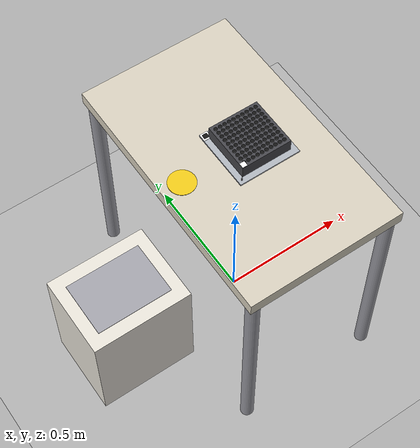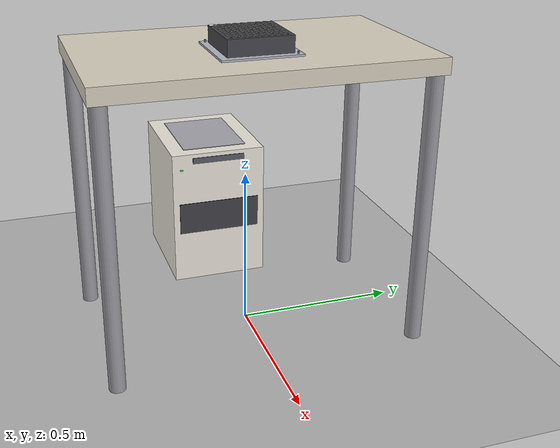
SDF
<sdf version="1.7">
 <world name="ketchup_placement_in_autosampler_cell">
  <model name="ground_plane">
   <static>true</static>
   <link name="link">
    <collision name="c"><geometry><plane><normal>0 0 1</normal><size>100 100</size></plane></geometry></collision>
    <visual name="v">
     <geometry><plane><normal>0 0 1</normal><size>100 100</size></plane></geometry>
     <material><ambient>0.60 0.60 0.60 1</ambient><diffuse>0.70 0.70 0.70 1</diffuse></material>
    </visual>
   </link>
  </model>
  <model name="bench">
   <static>true</static>
   <link name="link">
    <visual name="top">
     <pose>0 0 0.875 0 0 0</pose>
     <geometry><box><size>0.60 1.00 0.05</size></box></geometry>
     <material><ambient>0.85 0.82 0.75 1</ambient><diffuse>0.85 0.82 0.75 1</diffuse></material>
    </visual>
    <collision name="top_c">
     <pose>0 0 0.875 0 0 0</pose>
     <geometry><box><size>0.60 1.00 0.05</size></box></geometry>
    </collision>
    <visual name="leg_fr">
     <pose>0.27 -0.47 0.425 0 0 0</pose>
     <geometry><cylinder><radius>0.025</radius><length>0.850</length></cylinder></geometry>
     <material><ambient>0.45 0.45 0.48 1</ambient><diffuse>0.60 0.60 0.63 1</diffuse></material>
    </visual>
    <collision name="leg_fr_c">
     <pose>0.27 -0.47 0.425 0 0 0</pose>
     <geometry><cylinder><radius>0.025</radius><length>0.850</length></cylinder></geometry>
    </collision>
    <visual name="leg_fl">
     <pose>0.27 0.47 0.425 0 0 0</pose>
     <geometry><cylinder><radius>0.025</radius><length>0.850</length></cylinder></geometry>
     <material><ambient>0.45 0.45 0.48 1</ambient><diffuse>0.60 0.60 0.63 1</diffuse></material>
    </visual>
    <collision name="leg_fl_c">
     <pose>0.27 0.47 0.425 0 0 0</pose>
     <geometry><cylinder><radius>0.025</radius><length>0.850</length></cylinder></geometry>
    </collision>
    <visual name="leg_br">
     <pose>-0.27 -0.47 0.425 0 0 0</pose>
     <geometry><cylinder><radius>0.025</radius><length>0.850</length></cylinder></geometry>
     <material><ambient>0.45 0.45 0.48 1</ambient><diffuse>0.60 0.60 0.63 1</diffuse></material>
    </visual>
    <collision name="leg_br_c">
     <pose>-0.27 -0.47 0.425 0 0 0</pose>
     <geometry><cylinder><radius>0.025</radius><length>0.850</length></cylinder></geometry>
    </collision>
    <visual name="leg_bl">
     <pose>-0.27 0.47 0.425 0 0 0</pose>
     <geometry><cylinder><radius>0.025</radius><length>0.850</length></cylinder></geometry>
     <material><ambient>0.45 0.45 0.48 1</ambient><diffuse>0.60 0.60 0.63 1</diffuse></material>
    </visual>
    <collision name="leg_bl_c">
     <pose>-0.27 0.47 0.425 0 0 0</pose>
     <geometry><cylinder><radius>0.025</radius><length>0.850</length></cylinder></geometry>
    </collision>
   </link>
  </model>
  <model name="arm_base_marker">
   <static>true</static>
   <pose>-0.22 0.00 0.901 0 0 0</pose>
   <link name="disc">
    <visual name="v">
     <geometry><cylinder><radius>0.05</radius><length>0.002</length></cylinder></geometry>
     <material><ambient>0.95 0.80 0.10 1</ambient><diffuse>0.95 0.80 0.10 1</diffuse></material>
    </visual>
   </link>
  </model>
  <model name="hplc_instrument">
   <static>true</static>
   <pose>-0.50 0.00 0.234 0 0 0</pose>
   <link name="link">
    <visual name="chassis">
     <geometry><box><size>0.396 0.324 0.468</size></box></geometry>
     <material><ambient>0.88 0.86 0.82 1</ambient><diffuse>0.92 0.90 0.86 1</diffuse></material>
    </visual>
    <collision name="chassis_c"><geometry><box><size>0.396 0.324 0.468</size></box></geometry></collision>
    <visual name="drawer_band">
     <pose>0.199 0.00 0.000 0 0 0</pose>
     <geometry><box><size>0.002 0.280 0.110</size></box></geometry>
     <material><ambient>0.20 0.20 0.22 1</ambient><diffuse>0.25 0.25 0.27 1</diffuse></material>
    </visual>
    <visual name="led">
     <pose>0.199 -0.130 0.180 0 0 0</pose>
     <geometry><box><size>0.002 0.010 0.005</size></box></geometry>
     <material>
      <ambient>0.10 0.80 0.20 1</ambient>
      <diffuse>0.15 0.95 0.25 1</diffuse>
      <emissive>0.05 0.40 0.10 1</emissive>
     </material>
    </visual>
    <visual name="label_strip">
     <pose>0.199 0.000 0.210 0 0 0</pose>
     <geometry><box><size>0.002 0.180 0.020</size></box></geometry>
     <material><ambient>0.30 0.30 0.34 1</ambient><diffuse>0.35 0.35 0.40 1</diffuse></material>
    </visual>
    <visual name="top_vent">
     <pose>0.000 0.000 0.235 0 0 0</pose>
     <geometry><box><size>0.300 0.220 0.002</size></box></geometry>
     <material><ambient>0.55 0.55 0.58 1</ambient><diffuse>0.65 0.65 0.68 1</diffuse></material>
    </visual>
   </link>
  </model>
  <model name="alignment_plate">
   <static>true</static>
   <pose>0.05 0.00 0.903 0 0 0</pose>
   <link name="link">
    <visual name="plate">
     <geometry><box><size>0.240 0.240 0.006</size></box></geometry>
     <material><ambient>0.55 0.57 0.60 1</ambient><diffuse>0.70 0.72 0.75 1</diffuse></material>
    </visual>
    <collision name="c"><geometry><box><size>0.240 0.240 0.006</size></box></geometry></collision>
    <visual name="pin_a">
     <pose>0.105 0.105 0.006 0 0 0</pose>
     <geometry><cylinder><radius>0.003</radius><length>0.008</length></cylinder></geometry>
     <material><ambient>0.30 0.30 0.32 1</ambient><diffuse>0.40 0.40 0.42 1</diffuse></material>
    </visual>
    <visual name="pin_b">
     <pose>-0.105 -0.105 0.006 0 0 0</pose>
     <geometry><cylinder><radius>0.003</radius><length>0.008</length></cylinder></geometry>
     <material><ambient>0.30 0.30 0.32 1</ambient><diffuse>0.40 0.40 0.42 1</diffuse></material>
    </visual>
    <visual name="fiducial_bg">
     <pose>-0.105 0.105 0.006 0 0 0</pose>
     <geometry><box><size>0.030 0.030 0.001</size></box></geometry>
     <material><ambient>0.98 0.98 0.98 1</ambient><diffuse>0.99 0.99 0.99 1</diffuse></material>
    </visual>
    <visual name="fiducial_fg">
     <pose>-0.105 0.105 0.0065 0 0 0</pose>
     <geometry><box><size>0.018 0.018 0.001</size></box></geometry>
     <material><ambient>0.05 0.05 0.05 1</ambient><diffuse>0.08 0.08 0.08 1</diffuse></material>
    </visual>
   </link>
  </model>
  <model name="destination_tray">
   <static>true</static>
   <pose>0.05 0.00 0.931 0 0 0</pose>
   <link name="link">
    <visual name="body">
     <geometry><box><size>0.195 0.195 0.050</size></box></geometry>
     <material><ambient>0.20 0.20 0.22 1</ambient><diffuse>0.28 0.28 0.30 1</diffuse></material>
    </visual>
    <collision name="c"><geometry><box><size>0.195 0.195 0.050</size></box></geometry></collision>
    <visual name="corner_marker">
     <pose>-0.087 -0.087 0.026 0 0 0</pose>
     <geometry><box><size>0.020 0.020 0.001</size></box></geometry>
     <material><ambient>0.98 0.98 0.98 1</ambient><diffuse>0.99 0.99 0.99 1</diffuse></material>
    </visual>
    <visual name="slot_1_1">
     <pose>-0.081 -0.081 0.026 0 0 0</pose>
     <geometry><cylinder><radius>0.007</radius><length>0.001</length></cylinder></geometry>
     <material><ambient>0.05 0.05 0.05 1</ambient><diffuse>0.08 0.08 0.08 1</diffuse></material>
    </visual>
    <visual name="slot_2_1">
     <pose>-0.063 -0.081 0.026 0 0 0</pose>
     <geometry><cylinder><radius>0.007</radius><length>0.001</length></cylinder></geometry>
     <material><ambient>0.05 0.05 0.05 1</ambient><diffuse>0.08 0.08 0.08 1</diffuse></material>
    </visual>
    <visual name="slot_3_1">
     <pose>-0.045 -0.081 0.026 0 0 0</pose>
     <geometry><cylinder><radius>0.007</radius><length>0.001</length></cylinder></geometry>
     <material><ambient>0.05 0.05 0.05 1</ambient><diffuse>0.08 0.08 0.08 1</diffuse></material>
    </visual>
    <visual name="slot_4_1">
     <pose>-0.027 -0.081 0.026 0 0 0</pose>
     <geometry><cylinder><radius>0.007</radius><length>0.001</length></cylinder></geometry>
     <material><ambient>0.05 0.05 0.05 1</ambient><diffuse>0.08 0.08 0.08 1</diffuse></material>
    </visual>
    <visual name="slot_5_1">
     <pose>-0.009 -0.081 0.026 0 0 0</pose>
     <geometry><cylinder><radius>0.007</radius><length>0.001</length></cylinder></geometry>
     <material><ambient>0.05 0.05 0.05 1</ambient><diffuse>0.08 0.08 0.08 1</diffuse></material>
    </visual>
    <visual name="slot_6_1">
     <pose>0.009 -0.081 0.026 0 0 0</pose>
     <geometry><cylinder><radius>0.007</radius><length>0.001</length></cylinder></geometry>
     <material><ambient>0.05 0.05 0.05 1</ambient><diffuse>0.08 0.08 0.08 1</diffuse></material>
    </visual>
    <visual name="slot_7_1">
     <pose>0.027 -0.081 0.026 0 0 0</pose>
     <geometry><cylinder><radius>0.007</radius><length>0.001</length></cylinder></geometry>
     <material><ambient>0.05 0.05 0.05 1</ambient><diffuse>0.08 0.08 0.08 1</diffuse></material>
    </visual>
    <visual name="slot_8_1">
     <pose>0.045 -0.081 0.026 0 0 0</pose>
     <geometry><cylinder><radius>0.007</radius><length>0.001</length></cylinder></geometry>
     <material><ambient>0.05 0.05 0.05 1</ambient><diffuse>0.08 0.08 0.08 1</diffuse></material>
    </visual>
    <visual name="slot_9_1">
     <pose>0.063 -0.081 0.026 0 0 0</pose>
     <geometry><cylinder><radius>0.007</radius><length>0.001</length></cylinder></geometry>
     <material><ambient>0.05 0.05 0.05 1</ambient><diffuse>0.08 0.08 0.08 1</diffuse></material>
    </visual>
    <visual name="slot_10_1">
     <pose>0.081 -0.081 0.026 0 0 0</pose>
     <geometry><cylinder><radius>0.007</radius><length>0.001</length></cylinder></geometry>
     <material><ambient>0.05 0.05 0.05 1</ambient><diffuse>0.08 0.08 0.08 1</diffuse></material>
    </visual>
    <visual name="slot_1_2">
     <pose>-0.081 -0.063 0.026 0 0 0</pose>
     <geometry><cylinder><radius>0.007</radius><length>0.001</length></cylinder></geometry>
     <material><ambient>0.05 0.05 0.05 1</ambient><diffuse>0.08 0.08 0.08 1</diffuse></material>
    </visual>
    <visual name="slot_2_2">
     <pose>-0.063 -0.063 0.026 0 0 0</pose>
     <geometry><cylinder><radius>0.007</radius><length>0.001</length></cylinder></geometry>
     <material><ambient>0.05 0.05 0.05 1</ambient><diffuse>0.08 0.08 0.08 1</diffuse></material>
    </visual>
    <visual name="slot_3_2">
     <pose>-0.045 -0.063 0.026 0 0 0</pose>
     <geometry><cylinder><radius>0.007</radius><length>0.001</length></cylinder></geometry>
     <material><ambient>0.05 0.05 0.05 1</ambient><diffuse>0.08 0.08 0.08 1</diffuse></material>
    </visual>
    <visual name="slot_4_2">
     <pose>-0.027 -0.063 0.026 0 0 0</pose>
     <geometry><cylinder><radius>0.007</radius><length>0.001</length></cylinder></geometry>
     <material><ambient>0.05 0.05 0.05 1</ambient><diffuse>0.08 0.08 0.08 1</diffuse></material>
    </visual>
    <visual name="slot_5_2">
     <pose>-0.009 -0.063 0.026 0 0 0</pose>
     <geometry><cylinder><radius>0.007</radius><length>0.001</length></cylinder></geometry>
     <material><ambient>0.05 0.05 0.05 1</ambient><diffuse>0.08 0.08 0.08 1</diffuse></material>
    </visual>
    <visual name="slot_6_2">
     <pose>0.009 -0.063 0.026 0 0 0</pose>
     <geometry><cylinder><radius>0.007</radius><length>0.001</length></cylinder></geometry>
     <material><ambient>0.05 0.05 0.05 1</ambient><diffuse>0.08 0.08 0.08 1</diffuse></material>
    </visual>
    <visual name="slot_7_2">
     <pose>0.027 -0.063 0.026 0 0 0</pose>
     <geometry><cylinder><radius>0.007</radius><length>0.001</length></cylinder></geometry>
     <material><ambient>0.05 0.05 0.05 1</ambient><diffuse>0.08 0.08 0.08 1</diffuse></material>
    </visual>
    <visual name="slot_8_2">
     <pose>0.045 -0.063 0.026 0 0 0</pose>
     <geometry><cylinder><radius>0.007</radius><length>0.001</length></cylinder></geometry>
     <material><ambient>0.05 0.05 0.05 1</ambient><diffuse>0.08 0.08 0.08 1</diffuse></material>
    </visual>
    <visual name="slot_9_2">
     <pose>0.063 -0.063 0.026 0 0 0</pose>
     <geometry><cylinder><radius>0.007</radius><length>0.001</length></cylinder></geometry>
     <material><ambient>0.05 0.05 0.05 1</ambient><diffuse>0.08 0.08 0.08 1</diffuse></material>
    </visual>
    <visual name="slot_10_2">
     <pose>0.081 -0.063 0.026 0 0 0</pose>
     <geometry><cylinder><radius>0.007</radius><length>0.001</length></cylinder></geometry>
     <material><ambient>0.05 0.05 0.05 1</ambient><diffuse>0.08 0.08 0.08 1</diffuse></material>
    </visual>
    <visual name="slot_1_3">
     <pose>-0.081 -0.045 0.026 0 0 0</pose>
     <geometry><cylinder><radius>0.007</radius><length>0.001</length></cylinder></geometry>
     <material><ambient>0.05 0.05 0.05 1</ambient><diffuse>0.08 0.08 0.08 1</diffuse></material>
    </visual>
    <visual name="slot_2_3">
     <pose>-0.063 -0.045 0.026 0 0 0</pose>
     <geometry><cylinder><radius>0.007</radius><length>0.001</length></cylinder></geometry>
     <material><ambient>0.05 0.05 0.05 1</ambient><diffuse>0.08 0.08 0.08 1</diffuse></material>
    </visual>
    <visual name="slot_3_3">
     <pose>-0.045 -0.045 0.026 0 0 0</pose>
     <geometry><cylinder><radius>0.007</radius><length>0.001</length></cylinder></geometry>
     <material><ambient>0.05 0.05 0.05 1</ambient><diffuse>0.08 0.08 0.08 1</diffuse></material>
    </visual>
    <visual name="slot_4_3">
     <pose>-0.027 -0.045 0.026 0 0 0</pose>
     <geometry><cylinder><radius>0.007</radius><length>0.001</length></cylinder></geometry>
     <material><ambient>0.05 0.05 0.05 1</ambient><diffuse>0.08 0.08 0.08 1</diffuse></material>
    </visual>
    <visual name="slot_5_3">
     <pose>-0.009 -0.045 0.026 0 0 0</pose>
     <geometry><cylinder><radius>0.007</radius><length>0.001</length></cylinder></geometry>
     <material><ambient>0.05 0.05 0.05 1</ambient><diffuse>0.08 0.08 0.08 1</diffuse></material>
    </visual>
    <visual name="slot_6_3">
     <pose>0.009 -0.045 0.026 0 0 0</pose>
     <geometry><cylinder><radius>0.007</radius><length>0.001</length></cylinder></geometry>
     <material><ambient>0.05 0.05 0.05 1</ambient><diffuse>0.08 0.08 0.08 1</diffuse></material>
    </visual>
    <visual name="slot_7_3">
     <pose>0.027 -0.045 0.026 0 0 0</pose>
     <geometry><cylinder><radius>0.007</radius><length>0.001</length></cylinder></geometry>
     <material><ambient>0.05 0.05 0.05 1</ambient><diffuse>0.08 0.08 0.08 1</diffuse></material>
    </visual>
    <visual name="slot_8_3">
     <pose>0.045 -0.045 0.026 0 0 0</pose>
     <geometry><cylinder><radius>0.007</radius><length>0.001</length></cylinder></geometry>
     <material><ambient>0.05 0.05 0.05 1</ambient><diffuse>0.08 0.08 0.08 1</diffuse></material>
    </visual>
    <visual name="slot_9_3">
     <pose>0.063 -0.045 0.026 0 0 0</pose>
     <geometry><cylinder><radius>0.007</radius><length>0.001</length></cylinder></geometry>
     <material><ambient>0.05 0.05 0.05 1</ambient><diffuse>0.08 0.08 0.08 1</diffuse></material>
    </visual>
    <visual name="slot_10_3">
     <pose>0.081 -0.045 0.026 0 0 0</pose>
     <geometry><cylinder><radius>0.007</radius><length>0.001</length></cylinder></geometry>
     <material><ambient>0.05 0.05 0.05 1</ambient><diffuse>0.08 0.08 0.08 1</diffuse></material>
    </visual>
    <visual name="slot_1_4">
     <pose>-0.081 -0.027 0.026 0 0 0</pose>
     <geometry><cylinder><radius>0.007</radius><length>0.001</length></cylinder></geometry>
     <material><ambient>0.05 0.05 0.05 1</ambient><diffuse>0.08 0.08 0.08 1</diffuse></material>
    </visual>
    <visual name="slot_2_4">
     <pose>-0.063 -0.027 0.026 0 0 0</pose>
     <geometry><cylinder><radius>0.007</radius><length>0.001</length></cylinder></geometry>
     <material><ambient>0.05 0.05 0.05 1</ambient><diffuse>0.08 0.08 0.08 1</diffuse></material>
    </visual>
    <visual name="slot_3_4">
     <pose>-0.045 -0.027 0.026 0 0 0</pose>
     <geometry><cylinder><radius>0.007</radius><length>0.001</length></cylinder></geometry>
     <material><ambient>0.05 0.05 0.05 1</ambient><diffuse>0.08 0.08 0.08 1</diffuse></material>
    </visual>
    <visual name="slot_4_4">
     <pose>-0.027 -0.027 0.026 0 0 0</pose>
     <geometry><cylinder><radius>0.007</radius><length>0.001</length></cylinder></geometry>
     <material><ambient>0.05 0.05 0.05 1</ambient><diffuse>0.08 0.08 0.08 1</diffuse></material>
    </visual>
    <visual name="slot_5_4">
     <pose>-0.009 -0.027 0.026 0 0 0</pose>
     <geometry><cylinder><radius>0.007</radius><length>0.001</length></cylinder></geometry>
     <material><ambient>0.05 0.05 0.05 1</ambient><diffuse>0.08 0.08 0.08 1</diffuse></material>
    </visual>
    <visual name="slot_6_4">
     <pose>0.009 -0.027 0.026 0 0 0</pose>
     <geometry><cylinder><radius>0.007</radius><length>0.001</length></cylinder></geometry>
     <material><ambient>0.05 0.05 0.05 1</ambient><diffuse>0.08 0.08 0.08 1</diffuse></material>
    </visual>
    <visual name="slot_7_4">
     <pose>0.027 -0.027 0.026 0 0 0</pose>
     <geometry><cylinder><radius>0.007</radius><length>0.001</length></cylinder></geometry>
     <material><ambient>0.05 0.05 0.05 1</ambient><diffuse>0.08 0.08 0.08 1</diffuse></material>
    </visual>
    <visual name="slot_8_4">
     <pose>0.045 -0.027 0.026 0 0 0</pose>
     <geometry><cylinder><radius>0.007</radius><length>0.001</length></cylinder></geometry>
     <material><ambient>0.05 0.05 0.05 1</ambient><diffuse>0.08 0.08 0.08 1</diffuse></material>
    </visual>
    <visual name="slot_9_4">
     <pose>0.063 -0.027 0.026 0 0 0</pose>
     <geometry><cylinder><radius>0.007</radius><length>0.001</length></cylinder></geometry>
     <material><ambient>0.05 0.05 0.05 1</ambient><diffuse>0.08 0.08 0.08 1</diffuse></material>
    </visual>
    <visual name="slot_10_4">
     <pose>0.081 -0.027 0.026 0 0 0</pose>
     <geometry><cylinder><radius>0.007</radius><length>0.001</length></cylinder></geometry>
     <material><ambient>0.05 0.05 0.05 1</ambient><diffuse>0.08 0.08 0.08 1</diffuse></material>
    </visual>
    <visual name="slot_1_5">
     <pose>-0.081 -0.009 0.026 0 0 0</pose>
     <geometry><cylinder><radius>0.007</radius><length>0.001</length></cylinder></geometry>
     <material><ambient>0.05 0.05 0.05 1</ambient><diffuse>0.08 0.08 0.08 1</diffuse></material>
    </visual>
    <visual name="slot_2_5">
     <pose>-0.063 -0.009 0.026 0 0 0</pose>
     <geometry><cylinder><radius>0.007</radius><length>0.001</length></cylinder></geometry>
     <material><ambient>0.05 0.05 0.05 1</ambient><diffuse>0.08 0.08 0.08 1</diffuse></material>
    </visual>
    <visual name="slot_3_5">
     <pose>-0.045 -0.009 0.026 0 0 0</pose>
     <geometry><cylinder><radius>0.007</radius><length>0.001</length></cylinder></geometry>
     <material><ambient>0.05 0.05 0.05 1</ambient><diffuse>0.08 0.08 0.08 1</diffuse></material>
    </visual>
    <visual name="slot_4_5">
     <pose>-0.027 -0.009 0.026 0 0 0</pose>
     <geometry><cylinder><radius>0.007</radius><length>0.001</length></cylinder></geometry>
     <material><ambient>0.05 0.05 0.05 1</ambient><diffuse>0.08 0.08 0.08 1</diffuse></material>
    </visual>
    <visual name="slot_5_5">
     <pose>-0.009 -0.009 0.026 0 0 0</pose>
     <geometry><cylinder><radius>0.007</radius><length>0.001</length></cylinder></geometry>
     <material><ambient>0.05 0.05 0.05 1</ambient><diffuse>0.08 0.08 0.08 1</diffuse></material>
    </visual>
    <visual name="slot_6_5">
     <pose>0.009 -0.009 0.026 0 0 0</pose>
     <geometry><cylinder><radius>0.007</radius><length>0.001</length></cylinder></geometry>
     <material><ambient>0.05 0.05 0.05 1</ambient><diffuse>0.08 0.08 0.08 1</diffuse></material>
    </visual>
    <visual name="slot_7_5">
     <pose>0.027 -0.009 0.026 0 0 0</pose>
     <geometry><cylinder><radius>0.007</radius><length>0.001</length></cylinder></geometry>
     <material><ambient>0.05 0.05 0.05 1</ambient><diffuse>0.08 0.08 0.08 1</diffuse></material>
    </visual>
    <visual name="slot_8_5">
     <pose>0.045 -0.009 0.026 0 0 0</pose>
     <geometry><cylinder><radius>0.007</radius><length>0.001</length></cylinder></geometry>
     <material><ambient>0.05 0.05 0.05 1</ambient><diffuse>0.08 0.08 0.08 1</diffuse></material>
    </visual>
    <visual name="slot_9_5">
     <pose>0.063 -0.009 0.026 0 0 0</pose>
     <geometry><cylinder><radius>0.007</radius><length>0.001</length></cylinder></geometry>
     <material><ambient>0.05 0.05 0.05 1</ambient><diffuse>0.08 0.08 0.08 1</diffuse></material>
    </visual>
    <visual name="slot_10_5">
     <pose>0.081 -0.009 0.026 0 0 0</pose>
     <geometry><cylinder><radius>0.007</radius><length>0.001</length></cylinder></geometry>
     <material><ambient>0.05 0.05 0.05 1</ambient><diffuse>0.08 0.08 0.08 1</diffuse></material>
    </visual>
    <visual name="slot_1_6">
     <pose>-0.081 0.009 0.026 0 0 0</pose>
     <geometry><cylinder><radius>0.007</radius><length>0.001</length></cylinder></geometry>
     <material><ambient>0.05 0.05 0.05 1</ambient><diffuse>0.08 0.08 0.08 1</diffuse></material>
    </visual>
    <visual name="slot_2_6">
     <pose>-0.063 0.009 0.026 0 0 0</pose>
     <geometry><cylinder><radius>0.007</radius><length>0.001</length></cylinder></geometry>
     <material><ambient>0.05 0.05 0.05 1</ambient><diffuse>0.08 0.08 0.08 1</diffuse></material>
    </visual>
    <visual name="slot_3_6">
     <pose>-0.045 0.009 0.026 0 0 0</pose>
     <geometry><cylinder><radius>0.007</radius><length>0.001</length></cylinder></geometry>
     <material><ambient>0.05 0.05 0.05 1</ambient><diffuse>0.08 0.08 0.08 1</diffuse></material>
    </visual>
    <visual name="slot_4_6">
     <pose>-0.027 0.009 0.026 0 0 0</pose>
     <geometry><cylinder><radius>0.007</radius><length>0.001</length></cylinder></geometry>
     <material><ambient>0.05 0.05 0.05 1</ambient><diffuse>0.08 0.08 0.08 1</diffuse></material>
    </visual>
    <visual name="slot_5_6">
     <pose>-0.009 0.009 0.026 0 0 0</pose>
     <geometry><cylinder><radius>0.007</radius><length>0.001</length></cylinder></geometry>
     <material><ambient>0.05 0.05 0.05 1</ambient><diffuse>0.08 0.08 0.08 1</diffuse></material>
    </visual>
    <visual name="slot_6_6">
     <pose>0.009 0.009 0.026 0 0 0</pose>
     <geometry><cylinder><radius>0.007</radius><length>0.001</length></cylinder></geometry>
     <material><ambient>0.05 0.05 0.05 1</ambient><diffuse>0.08 0.08 0.08 1</diffuse></material>
    </visual>
    <visual name="slot_7_6">
     <pose>0.027 0.009 0.026 0 0 0</pose>
     <geometry><cylinder><radius>0.007</radius><length>0.001</length></cylinder></geometry>
     <material><ambient>0.05 0.05 0.05 1</ambient><diffuse>0.08 0.08 0.08 1</diffuse></material>
    </visual>
    <visual name="slot_8_6">
     <pose>0.045 0.009 0.026 0 0 0</pose>
     <geometry><cylinder><radius>0.007</radius><length>0.001</length></cylinder></geometry>
     <material><ambient>0.05 0.05 0.05 1</ambient><diffuse>0.08 0.08 0.08 1</diffuse></material>
    </visual>
    <visual name="slot_9_6">
     <pose>0.063 0.009 0.026 0 0 0</pose>
     <geometry><cylinder><radius>0.007</radius><length>0.001</length></cylinder></geometry>
     <material><ambient>0.05 0.05 0.05 1</ambient><diffuse>0.08 0.08 0.08 1</diffuse></material>
    </visual>
    <visual name="slot_10_6">
     <pose>0.081 0.009 0.026 0 0 0</pose>
     <geometry><cylinder><radius>0.007</radius><length>0.001</length></cylinder></geometry>
     <material><ambient>0.05 0.05 0.05 1</ambient><diffuse>0.08 0.08 0.08 1</diffuse></material>
    </visual>
    <visual name="slot_1_7">
     <pose>-0.081 0.027 0.026 0 0 0</pose>
     <geometry><cylinder><radius>0.007</radius><length>0.001</length></cylinder></geometry>
     <material><ambient>0.05 0.05 0.05 1</ambient><diffuse>0.08 0.08 0.08 1</diffuse></material>
    </visual>
    <visual name="slot_2_7">
     <pose>-0.063 0.027 0.026 0 0 0</pose>
     <geometry><cylinder><radius>0.007</radius><length>0.001</length></cylinder></geometry>
     <material><ambient>0.05 0.05 0.05 1</ambient><diffuse>0.08 0.08 0.08 1</diffuse></material>
    </visual>
    <visual name="slot_3_7">
     <pose>-0.045 0.027 0.026 0 0 0</pose>
     <geometry><cylinder><radius>0.007</radius><length>0.001</length></cylinder></geometry>
     <material><ambient>0.05 0.05 0.05 1</ambient><diffuse>0.08 0.08 0.08 1</diffuse></material>
    </visual>
    <visual name="slot_4_7">
     <pose>-0.027 0.027 0.026 0 0 0</pose>
     <geometry><cylinder><radius>0.007</radius><length>0.001</length></cylinder></geometry>
     <material><ambient>0.05 0.05 0.05 1</ambient><diffuse>0.08 0.08 0.08 1</diffuse></material>
    </visual>
    <visual name="slot_5_7">
     <pose>-0.009 0.027 0.026 0 0 0</pose>
     <geometry><cylinder><radius>0.007</radius><length>0.001</length></cylinder></geometry>
     <material><ambient>0.05 0.05 0.05 1</ambient><diffuse>0.08 0.08 0.08 1</diffuse></material>
    </visual>
    <visual name="slot_6_7">
     <pose>0.009 0.027 0.026 0 0 0</pose>
     <geometry><cylinder><radius>0.007</radius><length>0.001</length></cylinder></geometry>
     <material><ambient>0.05 0.05 0.05 1</ambient><diffuse>0.08 0.08 0.08 1</diffuse></material>
    </visual>
    <visual name="slot_7_7">
     <pose>0.027 0.027 0.026 0 0 0</pose>
     <geometry><cylinder><radius>0.007</radius><length>0.001</length></cylinder></geometry>
     <material><ambient>0.05 0.05 0.05 1</ambient><diffuse>0.08 0.08 0.08 1</diffuse></material>
    </visual>
    <visual name="slot_8_7">
     <pose>0.045 0.027 0.026 0 0 0</pose>
     <geometry><cylinder><radius>0.007</radius><length>0.001</length></cylinder></geometry>
     <material><ambient>0.05 0.05 0.05 1</ambient><diffuse>0.08 0.08 0.08 1</diffuse></material>
    </visual>
    <visual name="slot_9_7">
     <pose>0.063 0.027 0.026 0 0 0</pose>
     <geometry><cylinder><radius>0.007</radius><length>0.001</length></cylinder></geometry>
     <material><ambient>0.05 0.05 0.05 1</ambient><diffuse>0.08 0.08 0.08 1</diffuse></material>
    </visual>
    <visual name="slot_10_7">
     <pose>0.081 0.027 0.026 0 0 0</pose>
     <geometry><cylinder><radius>0.007</radius><length>0.001</length></cylinder></geometry>
     <material><ambient>0.05 0.05 0.05 1</ambient><diffuse>0.08 0.08 0.08 1</diffuse></material>
    </visual>
    <visual name="slot_1_8">
     <pose>-0.081 0.045 0.026 0 0 0</pose>
     <geometry><cylinder><radius>0.007</radius><length>0.001</length></cylinder></geometry>
     <material><ambient>0.05 0.05 0.05 1</ambient><diffuse>0.08 0.08 0.08 1</diffuse></material>
    </visual>
    <visual name="slot_2_8">
     <pose>-0.063 0.045 0.026 0 0 0</pose>
     <geometry><cylinder><radius>0.007</radius><length>0.001</length></cylinder></geometry>
     <material><ambient>0.05 0.05 0.05 1</ambient><diffuse>0.08 0.08 0.08 1</diffuse></material>
    </visual>
    <visual name="slot_3_8">
     <pose>-0.045 0.045 0.026 0 0 0</pose>
     <geometry><cylinder><radius>0.007</radius><length>0.001</length></cylinder></geometry>
     <material><ambient>0.05 0.05 0.05 1</ambient><diffuse>0.08 0.08 0.08 1</diffuse></material>
    </visual>
    <visual name="slot_4_8">
     <pose>-0.027 0.045 0.026 0 0 0</pose>
     <geometry><cylinder><radius>0.007</radius><length>0.001</length></cylinder></geometry>
     <material><ambient>0.05 0.05 0.05 1</ambient><diffuse>0.08 0.08 0.08 1</diffuse></material>
    </visual>
    <visual name="slot_5_8">
     <pose>-0.009 0.045 0.026 0 0 0</pose>
     <geometry><cylinder><radius>0.007</radius><length>0.001</length></cylinder></geometry>
     <material><ambient>0.05 0.05 0.05 1</ambient><diffuse>0.08 0.08 0.08 1</diffuse></material>
    </visual>
    <visual name="slot_6_8">
     <pose>0.009 0.045 0.026 0 0 0</pose>
     <geometry><cylinder><radius>0.007</radius><length>0.001</length></cylinder></geometry>
     <material><ambient>0.05 0.05 0.05 1</ambient><diffuse>0.08 0.08 0.08 1</diffuse></material>
    </visual>
    <visual name="slot_7_8">
     <pose>0.027 0.045 0.026 0 0 0</pose>
     <geometry><cylinder><radius>0.007</radius><length>0.001</length></cylinder></geometry>
     <material><ambient>0.05 0.05 0.05 1</ambient><diffuse>0.08 0.08 0.08 1</diffuse></material>
    </visual>
    <visual name="slot_8_8">
     <pose>0.045 0.045 0.026 0 0 0</pose>
     <geometry><cylinder><radius>0.007</radius><length>0.001</length></cylinder></geometry>
     <material><ambient>0.05 0.05 0.05 1</ambient><diffuse>0.08 0.08 0.08 1</diffuse></material>
    </visual>
    <visual name="slot_9_8">
     <pose>0.063 0.045 0.026 0 0 0</pose>
     <geometry><cylinder><radius>0.007</radius><length>0.001</length></cylinder></geometry>
     <material><ambient>0.05 0.05 0.05 1</ambient><diffuse>0.08 0.08 0.08 1</diffuse></material>
    </visual>
    <visual name="slot_10_8">
     <pose>0.081 0.045 0.026 0 0 0</pose>
     <geometry><cylinder><radius>0.007</radius><length>0.001</length></cylinder></geometry>
     <material><ambient>0.05 0.05 0.05 1</ambient><diffuse>0.08 0.08 0.08 1</diffuse></material>
    </visual>
    <visual name="slot_1_9">
     <pose>-0.081 0.063 0.026 0 0 0</pose>
     <geometry><cylinder><radius>0.007</radius><length>0.001</length></cylinder></geometry>
     <material><ambient>0.05 0.05 0.05 1</ambient><diffuse>0.08 0.08 0.08 1</diffuse></material>
    </visual>
    <visual name="slot_2_9">
     <pose>-0.063 0.063 0.026 0 0 0</pose>
     <geometry><cylinder><radius>0.007</radius><length>0.001</length></cylinder></geometry>
     <material><ambient>0.05 0.05 0.05 1</ambient><diffuse>0.08 0.08 0.08 1</diffuse></material>
    </visual>
    <visual name="slot_3_9">
     <pose>-0.045 0.063 0.026 0 0 0</pose>
     <geometry><cylinder><radius>0.007</radius><length>0.001</length></cylinder></geometry>
     <material><ambient>0.05 0.05 0.05 1</ambient><diffuse>0.08 0.08 0.08 1</diffuse></material>
    </visual>
    <visual name="slot_4_9">
     <pose>-0.027 0.063 0.026 0 0 0</pose>
     <geometry><cylinder><radius>0.007</radius><length>0.001</length></cylinder></geometry>
     <material><ambient>0.05 0.05 0.05 1</ambient><diffuse>0.08 0.08 0.08 1</diffuse></material>
    </visual>
    <visual name="slot_5_9">
     <pose>-0.009 0.063 0.026 0 0 0</pose>
     <geometry><cylinder><radius>0.007</radius><length>0.001</length></cylinder></geometry>
     <material><ambient>0.05 0.05 0.05 1</ambient><diffuse>0.08 0.08 0.08 1</diffuse></material>
    </visual>
    <visual name="slot_6_9">
     <pose>0.009 0.063 0.026 0 0 0</pose>
     <geometry><cylinder><radius>0.007</radius><length>0.001</length></cylinder></geometry>
     <material><ambient>0.05 0.05 0.05 1</ambient><diffuse>0.08 0.08 0.08 1</diffuse></material>
    </visual>
    <visual name="slot_7_9">
     <pose>0.027 0.063 0.026 0 0 0</pose>
     <geometry><cylinder><radius>0.007</radius><length>0.001</length></cylinder></geometry>
     <material><ambient>0.05 0.05 0.05 1</ambient><diffuse>0.08 0.08 0.08 1</diffuse></material>
    </visual>
    <visual name="slot_8_9">
     <pose>0.045 0.063 0.026 0 0 0</pose>
     <geometry><cylinder><radius>0.007</radius><length>0.001</length></cylinder></geometry>
     <material><ambient>0.05 0.05 0.05 1</ambient><diffuse>0.08 0.08 0.08 1</diffuse></material>
    </visual>
    <visual name="slot_9_9">
     <pose>0.063 0.063 0.026 0 0 0</pose>
     <geometry><cylinder><radius>0.007</radius><length>0.001</length></cylinder></geometry>
     <material><ambient>0.05 0.05 0.05 1</ambient><diffuse>0.08 0.08 0.08 1</diffuse></material>
    </visual>
    <visual name="slot_10_9">
     <pose>0.081 0.063 0.026 0 0 0</pose>
     <geometry><cylinder><radius>0.007</radius><length>0.001</length></cylinder></geometry>
     <material><ambient>0.05 0.05 0.05 1</ambient><diffuse>0.08 0.08 0.08 1</diffuse></material>
    </visual>
    <visual name="slot_1_10">
     <pose>-0.081 0.081 0.026 0 0 0</pose>
     <geometry><cylinder><radius>0.007</radius><length>0.001</length></cylinder></geometry>
     <material><ambient>0.05 0.05 0.05 1</ambient><diffuse>0.08 0.08 0.08 1</diffuse></material>
    </visual>
    <visual name="slot_2_10">
     <pose>-0.063 0.081 0.026 0 0 0</pose>
     <geometry><cylinder><radius>0.007</radius><length>0.001</length></cylinder></geometry>
     <material><ambient>0.05 0.05 0.05 1</ambient><diffuse>0.08 0.08 0.08 1</diffuse></material>
    </visual>
    <visual name="slot_3_10">
     <pose>-0.045 0.081 0.026 0 0 0</pose>
     <geometry><cylinder><radius>0.007</radius><length>0.001</length></cylinder></geometry>
     <material><ambient>0.05 0.05 0.05 1</ambient><diffuse>0.08 0.08 0.08 1</diffuse></material>
    </visual>
    <visual name="slot_4_10">
     <pose>-0.027 0.081 0.026 0 0 0</pose>
     <geometry><cylinder><radius>0.007</radius><length>0.001</length></cylinder></geometry>
     <material><ambient>0.05 0.05 0.05 1</ambient><diffuse>0.08 0.08 0.08 1</diffuse></material>
    </visual>
    <visual name="slot_5_10">
     <pose>-0.009 0.081 0.026 0 0 0</pose>
     <geometry><cylinder><radius>0.007</radius><length>0.001</length></cylinder></geometry>
     <material><ambient>0.05 0.05 0.05 1</ambient><diffuse>0.08 0.08 0.08 1</diffuse></material>
    </visual>
    <visual name="slot_6_10">
     <pose>0.009 0.081 0.026 0 0 0</pose>
     <geometry><cylinder><radius>0.007</radius><length>0.001</length></cylinder></geometry>
     <material><ambient>0.05 0.05 0.05 1</ambient><diffuse>0.08 0.08 0.08 1</diffuse></material>
    </visual>
    <visual name="slot_7_10">
     <pose>0.027 0.081 0.026 0 0 0</pose>
     <geometry><cylinder><radius>0.007</radius><length>0.001</length></cylinder></geometry>
     <material><ambient>0.05 0.05 0.05 1</ambient><diffuse>0.08 0.08 0.08 1</diffuse></material>
    </visual>
    <visual name="slot_8_10">
     <pose>0.045 0.081 0.026 0 0 0</pose>
     <geometry><cylinder><radius>0.007</radius><length>0.001</length></cylinder></geometry>
     <material><ambient>0.05 0.05 0.05 1</ambient><diffuse>0.08 0.08 0.08 1</diffuse></material>
    </visual>
    <visual name="slot_9_10">
     <pose>0.063 0.081 0.026 0 0 0</pose>
     <geometry><cylinder><radius>0.007</radius><length>0.001</length></cylinder></geometry>
     <material><ambient>0.05 0.05 0.05 1</ambient><diffuse>0.08 0.08 0.08 1</diffuse></material>
    </visual>
    <visual name="slot_10_10">
     <pose>0.081 0.081 0.026 0 0 0</pose>
     <geometry><cylinder><radius>0.007</radius><length>0.001</length></cylinder></geometry>
     <material><ambient>0.05 0.05 0.05 1</ambient><diffuse>0.08 0.08 0.08 1</diffuse></material>
    </visual>
   </link>
  </model>
 </world>
</sdf>
